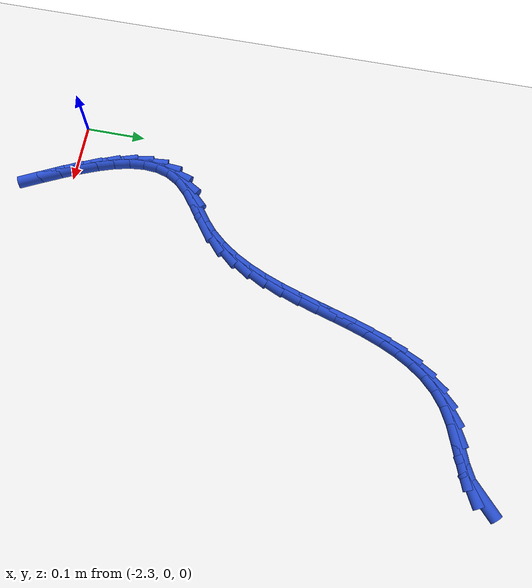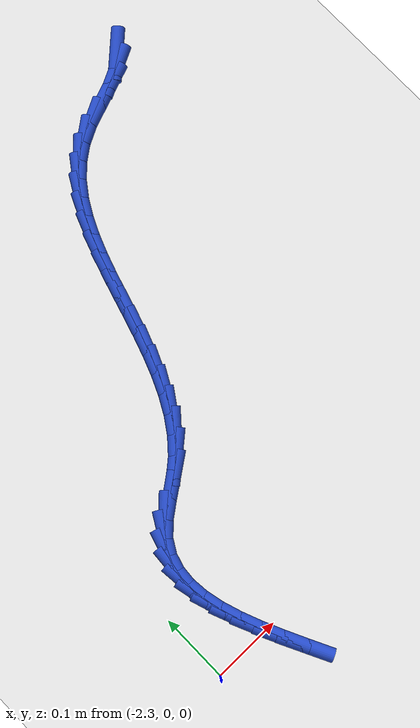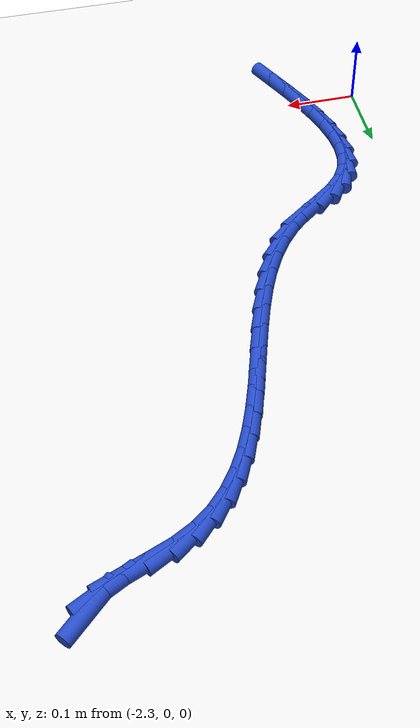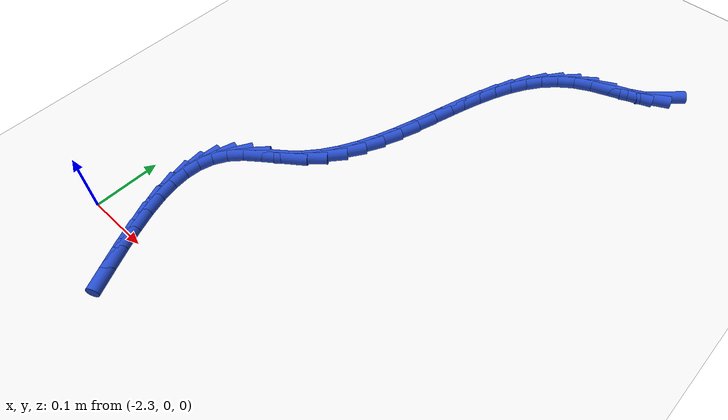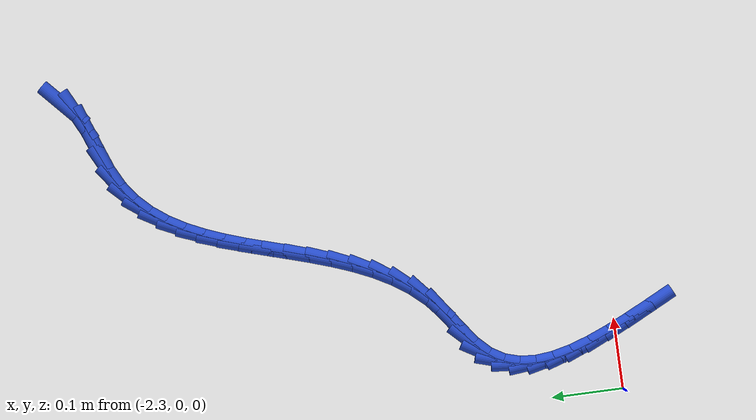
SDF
<sdf version="1.6">
 <world name="default">
  <model name="ground_plane">
   <static>1</static>
   <link name="link">
    <collision name="collision">
     <geometry><plane><normal>0 0 1</normal><size>100 100</size></plane></geometry>
     <surface><friction><ode><mu>100</mu><mu2>50</mu2></ode></friction></surface>
    </collision>
    <visual name="visual">
     <cast_shadows>0</cast_shadows>
     <geometry><plane><normal>0 0 1</normal><size>100 100</size></plane></geometry>
     <material>
      <script><uri>file://media/materials/scripts/gazebo.material</uri><name>Gazebo/WhiteGlow</name></script>
     </material>
    </visual>
   </link>
  </model>
  <model name="line">
   <link name="link_103">
    <pose>-1.8047285201958552 0.7226933611779708 0.01 0 1.57 0.7448611622057975</pose>
    <collision name="collision">
     <geometry><cylinder><radius>0.01</radius><length>0.08</length></cylinder></geometry>
    </collision>
    <visual name="visual">
     <material>
      <script><name>Gazebo/Blue</name><uri>file://media/materials/scripts/gazebo.material</uri></script>
     </material>
     <geometry><cylinder><radius>0.01</radius><length>0.08</length></cylinder></geometry>
    </visual>
   </link>
   <link name="link_104">
    <pose>-1.8226640492274095 0.7061560246806005 0.01 0 1.57 0.46571494982477757</pose>
    <collision name="collision">
     <geometry><cylinder><radius>0.01</radius><length>0.08</length></cylinder></geometry>
    </collision>
    <visual name="visual">
     <material>
      <script><name>Gazebo/Blue</name><uri>file://media/materials/scripts/gazebo.material</uri></script>
     </material>
     <geometry><cylinder><radius>0.01</radius><length>0.08</length></cylinder></geometry>
    </visual>
   </link>
   <link name="link_105">
    <pose>-1.8470131855427976 0.6939184688702827 0.01 0 1.57 0.351529875521069</pose>
    <collision name="collision">
     <geometry><cylinder><radius>0.01</radius><length>0.08</length></cylinder></geometry>
    </collision>
    <visual name="visual">
     <material>
      <script><name>Gazebo/Blue</name><uri>file://media/materials/scripts/gazebo.material</uri></script>
     </material>
     <geometry><cylinder><radius>0.01</radius><length>0.08</length></cylinder></geometry>
    </visual>
   </link>
   <link name="link_106">
    <pose>-1.87483076923709 0.6837160031383368 0.01 0 1.57 0.35915497686867864</pose>
    <collision name="collision">
     <geometry><cylinder><radius>0.01</radius><length>0.08</length></cylinder></geometry>
    </collision>
    <visual name="visual">
     <material>
      <script><name>Gazebo/Blue</name><uri>file://media/materials/scripts/gazebo.material</uri></script>
     </material>
     <geometry><cylinder><radius>0.01</radius><length>0.08</length></cylinder></geometry>
    </visual>
   </link>
   <link name="link_107">
    <pose>-1.9029792600188014 0.6731479784332447 0.01 0 1.57 0.47693798590012476</pose>
    <collision name="collision">
     <geometry><cylinder><radius>0.01</radius><length>0.08</length></cylinder></geometry>
    </collision>
    <visual name="visual">
     <material>
      <script><name>Gazebo/Blue</name><uri>file://media/materials/scripts/gazebo.material</uri></script>
     </material>
     <geometry><cylinder><radius>0.01</radius><length>0.08</length></cylinder></geometry>
    </visual>
   </link>
   <link name="link_108">
    <pose>-1.928505982540703 0.659957680254363 0.01 0 1.57 0.6421667601295988</pose>
    <collision name="collision">
     <geometry><cylinder><radius>0.01</radius><length>0.08</length></cylinder></geometry>
    </collision>
    <visual name="visual">
     <material>
      <script><name>Gazebo/Blue</name><uri>file://media/materials/scripts/gazebo.material</uri></script>
     </material>
     <geometry><cylinder><radius>0.01</radius><length>0.08</length></cylinder></geometry>
    </visual>
   </link>
   <link name="link_109">
    <pose>-1.950519586946123 0.6434933276912622 0.01 0 1.57 0.7981379456825908</pose>
    <collision name="collision">
     <geometry><cylinder><radius>0.01</radius><length>0.08</length></cylinder></geometry>
    </collision>
    <visual name="visual">
     <material>
      <script><name>Gazebo/Blue</name><uri>file://media/materials/scripts/gazebo.material</uri></script>
     </material>
     <geometry><cylinder><radius>0.01</radius><length>0.08</length></cylinder></geometry>
    </visual>
   </link>
   <link name="link_110">
    <pose>-1.9694181049255 0.6241070432757613 0.01 0 1.57 0.9347555148202783</pose>
    <collision name="collision">
     <geometry><cylinder><radius>0.01</radius><length>0.08</length></cylinder></geometry>
    </collision>
    <visual name="visual">
     <material>
      <script><name>Gazebo/Blue</name><uri>file://media/materials/scripts/gazebo.material</uri></script>
     </material>
     <geometry><cylinder><radius>0.01</radius><length>0.08</length></cylinder></geometry>
    </visual>
   </link>
   <link name="link_111">
    <pose>-1.9856193091896086 0.6021663197598525 0.01 0 1.57 1.0474603629600694</pose>
    <collision name="collision">
     <geometry><cylinder><radius>0.01</radius><length>0.08</length></cylinder></geometry>
    </collision>
    <visual name="visual">
     <material>
      <script><name>Gazebo/Blue</name><uri>file://media/materials/scripts/gazebo.material</uri></script>
     </material>
     <geometry><cylinder><radius>0.01</radius><length>0.08</length></cylinder></geometry>
    </visual>
   </link>
   <link name="link_112">
    <pose>-1.9995409724492226 0.5780386498955284 0.01 0 1.57 1.1357135057109435</pose>
    <collision name="collision">
     <geometry><cylinder><radius>0.01</radius><length>0.08</length></cylinder></geometry>
    </collision>
    <visual name="visual">
     <material>
      <script><name>Gazebo/Blue</name><uri>file://media/materials/scripts/gazebo.material</uri></script>
     </material>
     <geometry><cylinder><radius>0.01</radius><length>0.08</length></cylinder></geometry>
    </visual>
   </link>
   <link name="link_113">
    <pose>-2.0116008674151167 0.5520915264347822 0.01 0 1.57 1.2011515707440152</pose>
    <collision name="collision">
     <geometry><cylinder><radius>0.01</radius><length>0.08</length></cylinder></geometry>
    </collision>
    <visual name="visual">
     <material>
      <script><name>Gazebo/Blue</name><uri>file://media/materials/scripts/gazebo.material</uri></script>
     </material>
     <geometry><cylinder><radius>0.01</radius><length>0.08</length></cylinder></geometry>
    </visual>
   </link>
   <link name="link_114">
    <pose>-2.022216766798065 0.5246924421296071 0.01 0 1.57 1.2460420342480465</pose>
    <collision name="collision">
     <geometry><cylinder><radius>0.01</radius><length>0.08</length></cylinder></geometry>
    </collision>
    <visual name="visual">
     <material>
      <script><name>Gazebo/Blue</name><uri>file://media/materials/scripts/gazebo.material</uri></script>
     </material>
     <geometry><cylinder><radius>0.01</radius><length>0.08</length></cylinder></geometry>
    </visual>
   </link>
   <link name="link_115">
    <pose>-2.0318064433088425 0.4962088897319956 0.01 0 1.57 1.2724085020214213</pose>
    <collision name="collision">
     <geometry><cylinder><radius>0.01</radius><length>0.08</length></cylinder></geometry>
    </collision>
    <visual name="visual">
     <material>
      <script><name>Gazebo/Blue</name><uri>file://media/materials/scripts/gazebo.material</uri></script>
     </material>
     <geometry><cylinder><radius>0.01</radius><length>0.08</length></cylinder></geometry>
    </visual>
   </link>
   <link name="link_116">
    <pose>-2.040787669658222 0.4670083619939403 0.01 0 1.57 1.2816526917169837</pose>
    <collision name="collision">
     <geometry><cylinder><radius>0.01</radius><length>0.08</length></cylinder></geometry>
    </collision>
    <visual name="visual">
     <material>
      <script><name>Gazebo/Blue</name><uri>file://media/materials/scripts/gazebo.material</uri></script>
     </material>
     <geometry><cylinder><radius>0.01</radius><length>0.08</length></cylinder></geometry>
    </visual>
   </link>
   <link name="link_117">
    <pose>-2.0495782185569795 0.4374583516674339 0.01 0 1.57 1.274437047426575</pose>
    <collision name="collision">
     <geometry><cylinder><radius>0.01</radius><length>0.08</length></cylinder></geometry>
    </collision>
    <visual name="visual">
     <material>
      <script><name>Gazebo/Blue</name><uri>file://media/materials/scripts/gazebo.material</uri></script>
     </material>
     <geometry><cylinder><radius>0.01</radius><length>0.08</length></cylinder></geometry>
    </visual>
   </link>
   <link name="link_118">
    <pose>-2.0585958627158885 0.40792635150446993 0.01 0 1.57 1.2506828211674357</pose>
    <collision name="collision">
     <geometry><cylinder><radius>0.01</radius><length>0.08</length></cylinder></geometry>
    </collision>
    <visual name="visual">
     <material>
      <script><name>Gazebo/Blue</name><uri>file://media/materials/scripts/gazebo.material</uri></script>
     </material>
     <geometry><cylinder><radius>0.01</radius><length>0.08</length></cylinder></geometry>
    </visual>
   </link>
   <link name="link_119">
    <pose>-2.068258374845723 0.37877985425704097 0.01 0 1.57 1.2096320568837617</pose>
    <collision name="collision">
     <geometry><cylinder><radius>0.01</radius><length>0.08</length></cylinder></geometry>
    </collision>
    <visual name="visual">
     <material>
      <script><name>Gazebo/Blue</name><uri>file://media/materials/scripts/gazebo.material</uri></script>
     </material>
     <geometry><cylinder><radius>0.01</radius><length>0.08</length></cylinder></geometry>
    </visual>
   </link>
   <link name="link_120">
    <pose>-2.078983527657259 0.35038635267713975 0.01 0 1.57 1.1499960725636063</pose>
    <collision name="collision">
     <geometry><cylinder><radius>0.01</radius><length>0.08</length></cylinder></geometry>
    </collision>
    <visual name="visual">
     <material>
      <script><name>Gazebo/Blue</name><uri>file://media/materials/scripts/gazebo.material</uri></script>
     </material>
     <geometry><cylinder><radius>0.01</radius><length>0.08</length></cylinder></geometry>
    </visual>
   </link>
   <link name="link_121">
    <pose>-2.091189093861269 0.3231133395167592 0.01 0 1.57 1.0702790035068677</pose>
    <collision name="collision">
     <geometry><cylinder><radius>0.01</radius><length>0.08</length></cylinder></geometry>
    </collision>
    <visual name="visual">
     <material>
      <script><name>Gazebo/Blue</name><uri>file://media/materials/scripts/gazebo.material</uri></script>
     </material>
     <geometry><cylinder><radius>0.01</radius><length>0.08</length></cylinder></geometry>
    </visual>
   </link>
   <link name="link_122">
    <pose>-2.1052928461685276 0.29732830752789163 0.01 0 1.57 0.9694136300136024</pose>
    <collision name="collision">
     <geometry><cylinder><radius>0.01</radius><length>0.08</length></cylinder></geometry>
    </collision>
    <visual name="visual">
     <material>
      <script><name>Gazebo/Blue</name><uri>file://media/materials/scripts/gazebo.material</uri></script>
     </material>
     <geometry><cylinder><radius>0.01</radius><length>0.08</length></cylinder></geometry>
    </visual>
   </link>
   <link name="link_123">
    <pose>-2.1217125572898103 0.27339874946253073 0.01 0 1.57 0.8478022637575533</pose>
    <collision name="collision">
     <geometry><cylinder><radius>0.01</radius><length>0.08</length></cylinder></geometry>
    </collision>
    <visual name="visual">
     <material>
      <script><name>Gazebo/Blue</name><uri>file://media/materials/scripts/gazebo.material</uri></script>
     </material>
     <geometry><cylinder><radius>0.01</radius><length>0.08</length></cylinder></geometry>
    </visual>
   </link>
   <link name="link_124">
    <pose>-2.1408659999358903 0.25169215807266904 0.01 0 1.57 0.7106558981555587</pose>
    <collision name="collision">
     <geometry><cylinder><radius>0.01</radius><length>0.08</length></cylinder></geometry>
    </collision>
    <visual name="visual">
     <material>
      <script><name>Gazebo/Blue</name><uri>file://media/materials/scripts/gazebo.material</uri></script>
     </material>
     <geometry><cylinder><radius>0.01</radius><length>0.08</length></cylinder></geometry>
    </visual>
   </link>
   <link name="link_125">
    <pose>-2.163112950334529 0.23254488022210656 0.01 0 1.57 0.6212322219286914</pose>
    <collision name="collision">
     <geometry><cylinder><radius>0.01</radius><length>0.08</length></cylinder></geometry>
    </collision>
    <visual name="visual">
     <material>
      <script><name>Gazebo/Blue</name><uri>file://media/materials/scripts/gazebo.material</uri></script>
     </material>
     <geometry><cylinder><radius>0.01</radius><length>0.08</length></cylinder></geometry>
    </visual>
   </link>
   <link name="link_126">
    <pose>-2.187101930280373 0.21537426671706264 0.01 0 1.57 0.6436049078302747</pose>
    <collision name="collision">
     <geometry><cylinder><radius>0.01</radius><length>0.08</length></cylinder></geometry>
    </collision>
    <visual name="visual">
     <material>
      <script><name>Gazebo/Blue</name><uri>file://media/materials/scripts/gazebo.material</uri></script>
     </material>
     <geometry><cylinder><radius>0.01</radius><length>0.08</length></cylinder></geometry>
    </visual>
   </link>
   <link name="link_127">
    <pose>-2.2095299245720947 0.19854963320848218 0.01 0 1.57 0.7985763034246554</pose>
    <collision name="collision">
     <geometry><cylinder><radius>0.01</radius><length>0.08</length></cylinder></geometry>
    </collision>
    <visual name="visual">
     <material>
      <script><name>Gazebo/Blue</name><uri>file://media/materials/scripts/gazebo.material</uri></script>
     </material>
     <geometry><cylinder><radius>0.01</radius><length>0.08</length></cylinder></geometry>
    </visual>
   </link>
   <link name="link_128">
    <pose>-2.2271507468906964 0.1804581620404835 0.01 0 1.57 1.0379148801962677</pose>
    <collision name="collision">
     <geometry><cylinder><radius>0.01</radius><length>0.08</length></cylinder></geometry>
    </collision>
    <visual name="visual">
     <material>
      <script><name>Gazebo/Blue</name><uri>file://media/materials/scripts/gazebo.material</uri></script>
     </material>
     <geometry><cylinder><radius>0.01</radius><length>0.08</length></cylinder></geometry>
    </visual>
   </link>
   <link name="link_129">
    <pose>-2.238922137790928 0.1604996906864152 0.01 0 1.57 1.2813224141802955</pose>
    <collision name="collision">
     <geometry><cylinder><radius>0.01</radius><length>0.08</length></cylinder></geometry>
    </collision>
    <visual name="visual">
     <material>
      <script><name>Gazebo/Blue</name><uri>file://media/materials/scripts/gazebo.material</uri></script>
     </material>
     <geometry><cylinder><radius>0.01</radius><length>0.08</length></cylinder></geometry>
    </visual>
   </link>
   <link name="link_130">
    <pose>-2.2453847627783463 0.1388013752478973 0.01 0 1.57 1.4967025499918036</pose>
    <collision name="collision">
     <geometry><cylinder><radius>0.01</radius><length>0.08</length></cylinder></geometry>
    </collision>
    <visual name="visual">
     <material>
      <script><name>Gazebo/Blue</name><uri>file://media/materials/scripts/gazebo.material</uri></script>
     </material>
     <geometry><cylinder><radius>0.01</radius><length>0.08</length></cylinder></geometry>
    </visual>
   </link>
   <link name="link_131">
    <pose>-2.247113948546373 0.11550629786751455 0.01 0 1.57 -1.4729662447268397</pose>
    <collision name="collision">
     <geometry><cylinder><radius>0.01</radius><length>0.08</length></cylinder></geometry>
    </collision>
    <visual name="visual">
     <material>
      <script><name>Gazebo/Blue</name><uri>file://media/materials/scripts/gazebo.material</uri></script>
     </material>
     <geometry><cylinder><radius>0.01</radius><length>0.08</length></cylinder></geometry>
    </visual>
   </link>
   <link name="link_132">
    <pose>-2.24468502178843 0.09075754068785288 0.01 0 1.57 -1.3440697891235531</pose>
    <collision name="collision">
     <geometry><cylinder><radius>0.01</radius><length>0.08</length></cylinder></geometry>
    </collision>
    <visual name="visual">
     <material>
      <script><name>Gazebo/Blue</name><uri>file://media/materials/scripts/gazebo.material</uri></script>
     </material>
     <geometry><cylinder><radius>0.01</radius><length>0.08</length></cylinder></geometry>
    </visual>
   </link>
   <link name="link_133">
    <pose>-2.2386733091979387 0.06469818585149718 0.01 0 1.57 -1.2509129760408995</pose>
    <collision name="collision">
     <geometry><cylinder><radius>0.01</radius><length>0.08</length></cylinder></geometry>
    </collision>
    <visual name="visual">
     <material>
      <script><name>Gazebo/Blue</name><uri>file://media/materials/scripts/gazebo.material</uri></script>
     </material>
     <geometry><cylinder><radius>0.01</radius><length>0.08</length></cylinder></geometry>
    </visual>
   </link>
   <link name="link_134">
    <pose>-2.229654137468321 0.03747131550103268 0.01 0 1.57 -1.1856974049595146</pose>
    <collision name="collision">
     <geometry><cylinder><radius>0.01</radius><length>0.08</length></cylinder></geometry>
    </collision>
    <visual name="visual">
     <material>
      <script><name>Gazebo/Blue</name><uri>file://media/materials/scripts/gazebo.material</uri></script>
     </material>
     <geometry><cylinder><radius>0.01</radius><length>0.08</length></cylinder></geometry>
    </visual>
   </link>
   <link name="link_135">
    <pose>-2.2182028332929966 0.009220011779043977 0.01 0 1.57 -1.1422930350662512</pose>
    <collision name="collision">
     <geometry><cylinder><radius>0.01</radius><length>0.08</length></cylinder></geometry>
    </collision>
    <visual name="visual">
     <material>
      <script><name>Gazebo/Blue</name><uri>file://media/materials/scripts/gazebo.material</uri></script>
     </material>
     <geometry><cylinder><radius>0.01</radius><length>0.08</length></cylinder></geometry>
    </visual>
   </link>
   <link name="link_136">
    <pose>-2.204894723365389 -0.01991264317188274 0.01 0 1.57 -1.116454687420459</pose>
    <collision name="collision">
     <geometry><cylinder><radius>0.01</radius><length>0.08</length></cylinder></geometry>
    </collision>
    <visual name="visual">
     <material>
      <script><name>Gazebo/Blue</name><uri>file://media/materials/scripts/gazebo.material</uri></script>
     </material>
     <geometry><cylinder><radius>0.01</radius><length>0.08</length></cylinder></geometry>
    </visual>
   </link>
   <link name="link_137">
    <pose>-2.1903051343789186 -0.04978356720916269 0.01 0 1.57 -1.1055040246358188</pose>
    <collision name="collision">
     <geometry><cylinder><radius>0.01</radius><length>0.08</length></cylinder></geometry>
    </collision>
    <visual name="visual">
     <material>
      <script><name>Gazebo/Blue</name><uri>file://media/materials/scripts/gazebo.material</uri></script>
     </material>
     <geometry><cylinder><radius>0.01</radius><length>0.08</length></cylinder></geometry>
    </visual>
   </link>
  </model>
 </world>
</sdf>
